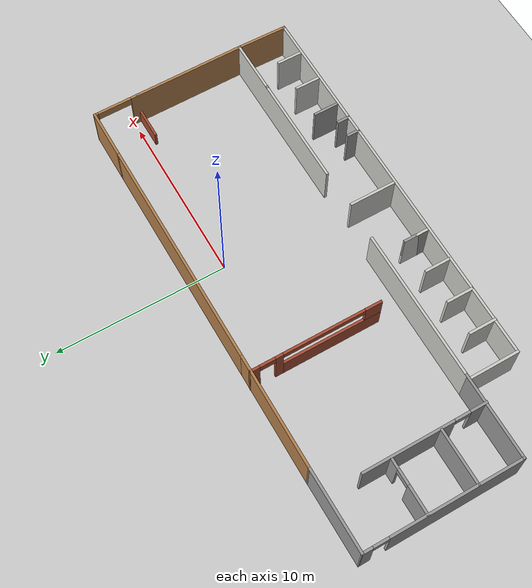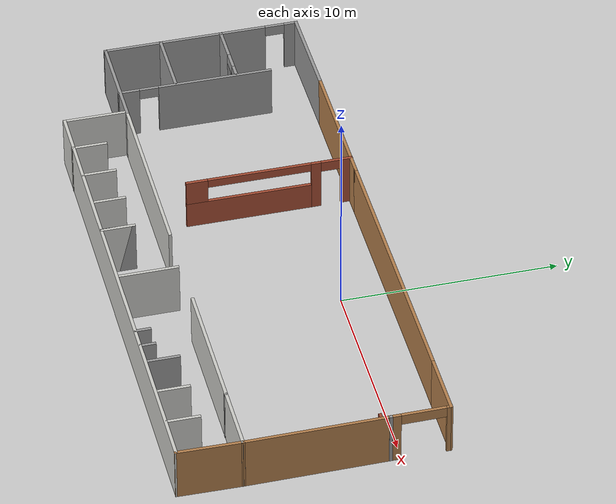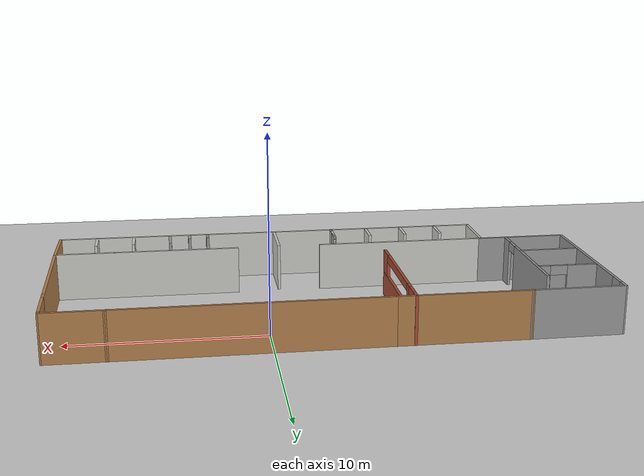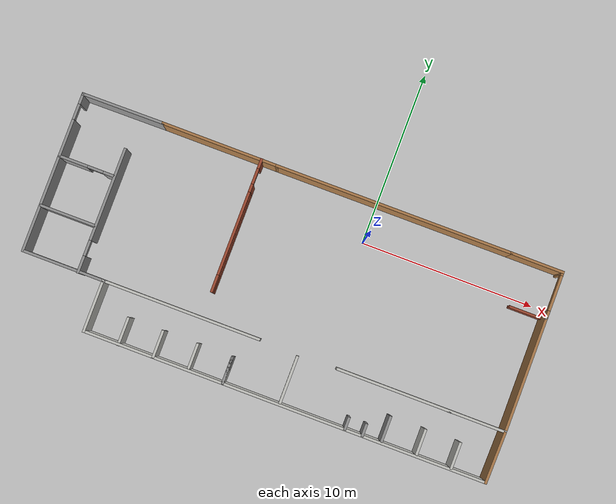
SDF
<sdf version="1.6">
 <world name="default">
  <model name="ground_plane">
   <static>1</static>
   <link name="link">
    <collision name="collision">
     <geometry><plane><normal>0 0 1</normal><size>100 100</size></plane></geometry>
     <surface><friction><ode><mu>100</mu><mu2>50</mu2></ode></friction></surface>
    </collision>
    <visual name="visual">
     <cast_shadows>0</cast_shadows>
     <geometry><plane><normal>0 0 1</normal><size>100 100</size></plane></geometry>
     <material>
      <script><uri>file://media/materials/scripts/gazebo.material</uri><name>Gazebo/Grey</name></script>
     </material>
    </visual>
   </link>
  </model>
  <model name="rest">
   <pose>-3.19031 -3.86827 0 0 -0 0</pose>
   <link name="Wall_105">
    <collision name="Wall_105_Collision">
     <geometry><box><size>1.5 0.15 2.5</size></box></geometry>
     <pose>0 0 1.25 0 -0 0</pose>
    </collision>
    <visual name="Wall_105_Visual">
     <pose>0 0 1.25 0 -0 0</pose>
     <geometry><box><size>1.5 0.15 2.5</size></box></geometry>
     <material>
      <script><uri>file://media/materials/scripts/gazebo.material</uri><name>Gazebo/CeilingTiled</name></script>
      <ambient>1 1 1 1</ambient>
     </material>
     <meta><layer>0</layer></meta>
    </visual>
    <pose>9.84331 -5.22473 0 0 -0 1.5708</pose>
   </link>
   <link name="Wall_107">
    <collision name="Wall_107_Collision">
     <geometry><box><size>1.538 0.15 2.5</size></box></geometry>
     <pose>0 0 1.25 0 -0 0</pose>
    </collision>
    <visual name="Wall_107_Visual">
     <pose>0 0 1.25 0 -0 0</pose>
     <geometry><box><size>1.538 0.15 2.5</size></box></geometry>
     <material>
      <script><uri>file://media/materials/scripts/gazebo.material</uri><name>Gazebo/CeilingTiled</name></script>
      <ambient>1 1 1 1</ambient>
     </material>
     <meta><layer>0</layer></meta>
    </visual>
    <pose>11.8423 -5.24373 0 0 0 -1.5708</pose>
   </link>
   <link name="Wall_109">
    <collision name="Wall_109_Collision">
     <geometry><box><size>0.744777 0.15 2.5</size></box></geometry>
     <pose>0 0 1.25 0 -0 0</pose>
    </collision>
    <visual name="Wall_109_Visual">
     <pose>0 0 1.25 0 -0 0</pose>
     <geometry><box><size>0.744777 0.15 2.5</size></box></geometry>
     <material>
      <script><uri>file://media/materials/scripts/gazebo.material</uri><name>Gazebo/Grey</name></script>
      <ambient>1 1 1 1</ambient>
     </material>
     <meta><layer>0</layer></meta>
    </visual>
    <pose>6.76931 -5.68423 0 0 -0 1.5708</pose>
   </link>
   <link name="Wall_113">
    <collision name="Wall_113_Collision">
     <geometry><box><size>0.745 0.15 2.5</size></box></geometry>
     <pose>0 0 1.25 0 -0 0</pose>
    </collision>
    <visual name="Wall_113_Visual">
     <pose>0 0 1.25 0 -0 0</pose>
     <geometry><box><size>0.745 0.15 2.5</size></box></geometry>
     <material>
      <script><uri>file://media/materials/scripts/gazebo.material</uri><name>Gazebo/Grey</name></script>
      <ambient>1 1 1 1</ambient>
     </material>
     <meta><layer>0</layer></meta>
    </visual>
    <pose>5.76931 -5.68423 0 0 -0 1.5708</pose>
   </link>
   <link name="Wall_115">
    <collision name="Wall_115_Collision">
     <geometry><box><size>1.643 0.15 2.5</size></box></geometry>
     <pose>0 0 1.25 0 -0 0</pose>
    </collision>
    <visual name="Wall_115_Visual">
     <pose>0 0 1.25 0 -0 0</pose>
     <geometry><box><size>1.643 0.15 2.5</size></box></geometry>
     <material>
      <script><uri>file://media/materials/scripts/gazebo.material</uri><name>Gazebo/CeilingTiled</name></script>
      <ambient>1 1 1 1</ambient>
     </material>
     <meta><layer>0</layer></meta>
    </visual>
    <pose>-7.25669 -5.29623 0 0 0 -1.5708</pose>
   </link>
   <link name="Wall_117">
    <collision name="Wall_117_Collision">
     <geometry><box><size>1.59 0.15 2.5</size></box></geometry>
     <pose>0 0 1.25 0 -0 0</pose>
    </collision>
    <visual name="Wall_117_Visual">
     <pose>0 0 1.25 0 -0 0</pose>
     <geometry><box><size>1.59 0.15 2.5</size></box></geometry>
     <material>
      <script><uri>file://media/materials/scripts/gazebo.material</uri><name>Gazebo/CeilingTiled</name></script>
      <ambient>1 1 1 1</ambient>
     </material>
     <meta><layer>0</layer></meta>
    </visual>
    <pose>-5.25669 -5.26973 0 0 0 -1.5708</pose>
   </link>
   <link name="Wall_119">
    <collision name="Wall_119_Collision">
     <geometry><box><size>1.538 0.15 2.5</size></box></geometry>
     <pose>0 0 1.25 0 -0 0</pose>
    </collision>
    <visual name="Wall_119_Visual">
     <pose>0 0 1.25 0 -0 0</pose>
     <geometry><box><size>1.538 0.15 2.5</size></box></geometry>
     <material>
      <script><uri>file://media/materials/scripts/gazebo.material</uri><name>Gazebo/CeilingTiled</name></script>
      <ambient>1 1 1 1</ambient>
     </material>
     <meta><layer>0</layer></meta>
    </visual>
    <pose>-3.25669 -5.24373 0 0 0 -1.5708</pose>
   </link>
   <link name="Wall_121">
    <collision name="Wall_121_Collision">
     <geometry><box><size>1.59 0.15 2.5</size></box></geometry>
     <pose>0 0 1.25 0 -0 0</pose>
    </collision>
    <visual name="Wall_121_Visual">
     <pose>0 0 1.25 0 -0 0</pose>
     <geometry><box><size>1.59 0.15 2.5</size></box></geometry>
     <material>
      <script><uri>file://media/materials/scripts/gazebo.material</uri><name>Gazebo/Grey</name></script>
      <ambient>1 1 1 1</ambient>
     </material>
     <meta><layer>0</layer></meta>
    </visual>
    <pose>-1.25669 -5.26973 0 0 0 -1.5708</pose>
   </link>
   <link name="Wall_122">
    <collision name="Wall_122_Collision">
     <geometry><box><size>1.59 0.15 2.5</size></box></geometry>
     <pose>0 0 1.25 0 -0 0</pose>
    </collision>
    <visual name="Wall_122_Visual">
     <pose>0 0 1.25 0 -0 0</pose>
     <geometry><box><size>1.59 0.15 2.5</size></box></geometry>
     <material>
      <script><uri>file://media/materials/scripts/gazebo.material</uri><name>Gazebo/CeilingTiled</name></script>
      <ambient>1 1 1 1</ambient>
     </material>
     <meta><layer>0</layer></meta>
    </visual>
    <pose>-1.25669 -5.26973 0 0 -0 1.5708</pose>
   </link>
   <link name="Wall_125">
    <collision name="Wall_125_Collision">
     <geometry><box><size>4.79 0.15 2.5</size></box></geometry>
     <pose>0 0 1.25 0 -0 0</pose>
    </collision>
    <visual name="Wall_125_Visual">
     <pose>0 0 1.25 0 -0 0</pose>
     <geometry><box><size>4.79 0.15 2.5</size></box></geometry>
     <material>
      <script><uri>file://media/materials/scripts/gazebo.material</uri><name>Gazebo/Grey</name></script>
      <ambient>1 1 1 1</ambient>
     </material>
     <meta><layer>0</layer></meta>
    </visual>
    <pose>-11.5766 5.9975 0 0 0 -3.13393</pose>
   </link>
   <link name="Wall_126">
    <pose>-13.8966 1.42972 0 0 0 -1.5708</pose>
    <visual name="Wall_126_Visual_0">
     <pose>-4.29481 0 1.25 0 -0 0</pose>
     <geometry><box><size>0.660381 0.15 2.5</size></box></geometry>
     <material>
      <script><uri>file://media/materials/scripts/gazebo.material</uri><name>Gazebo/Grey</name></script>
      <ambient>1 1 1 1</ambient>
     </material>
     <meta><layer>0</layer></meta>
    </visual>
    <collision name="Wall_126_Collision_0">
     <geometry><box><size>0.660381 0.15 2.5</size></box></geometry>
     <pose>-4.29481 0 1.25 0 -0 0</pose>
    </collision>
    <visual name="Wall_126_Visual_1">
     <pose>0.780191 0 1.25 0 -0 0</pose>
     <geometry><box><size>7.68962 0.15 2.5</size></box></geometry>
     <material>
      <script><uri>file://media/materials/scripts/gazebo.material</uri><name>Gazebo/Grey</name></script>
      <ambient>1 1 1 1</ambient>
     </material>
     <meta><layer>0</layer></meta>
    </visual>
    <collision name="Wall_126_Collision_1">
     <geometry><box><size>7.68962 0.15 2.5</size></box></geometry>
     <pose>0.780191 0 1.25 0 -0 0</pose>
    </collision>
    <visual name="Wall_126_Visual_2">
     <pose>-3.51462 0 2.25 0 -0 0</pose>
     <geometry><box><size>0.9 0.15 0.5</size></box></geometry>
     <material>
      <script><uri>file://media/materials/scripts/gazebo.material</uri><name>Gazebo/Grey</name></script>
      <ambient>1 1 1 1</ambient>
     </material>
     <meta><layer>0</layer></meta>
    </visual>
    <collision name="Wall_126_Collision_2">
     <geometry><box><size>0.9 0.15 0.5</size></box></geometry>
     <pose>-3.51462 0 2.25 0 -0 0</pose>
    </collision>
   </link>
   <link name="Wall_128">
    <collision name="Wall_128_Collision">
     <geometry><box><size>5 0.15 2.5</size></box></geometry>
     <pose>0 0 1.25 0 -0 0</pose>
    </collision>
    <visual name="Wall_128_Visual">
     <pose>0 0 1.25 0 -0 0</pose>
     <geometry><box><size>5 0.15 2.5</size></box></geometry>
     <material>
      <script><uri>file://media/materials/scripts/gazebo.material</uri><name>Gazebo/Grey</name></script>
      <ambient>1 1 1 1</ambient>
     </material>
     <meta><layer>0</layer></meta>
    </visual>
    <pose>-11.4532 -3.11873 0 0 -0 3.14159</pose>
   </link>
   <link name="Wall_132">
    <pose>-10.6853 0.397406 0 0 0 -1.5708</pose>
    <visual name="Wall_132_Visual_0">
     <pose>-0.952875 0 1.25 0 -0 0</pose>
     <geometry><box><size>5.34425 0.15 2.5</size></box></geometry>
     <material>
      <script><uri>file://media/materials/scripts/gazebo.material</uri><name>Gazebo/Grey</name></script>
      <ambient>1 1 1 1</ambient>
     </material>
     <meta><layer>0</layer></meta>
    </visual>
    <collision name="Wall_132_Collision_0">
     <geometry><box><size>5.34425 0.15 2.5</size></box></geometry>
     <pose>-0.952875 0 1.25 0 -0 0</pose>
    </collision>
    <visual name="Wall_132_Visual_1">
     <pose>3.12213 0 1.25 0 -0 0</pose>
     <geometry><box><size>1.00575 0.15 2.5</size></box></geometry>
     <material>
      <script><uri>file://media/materials/scripts/gazebo.material</uri><name>Gazebo/Grey</name></script>
      <ambient>1 1 1 1</ambient>
     </material>
     <meta><layer>0</layer></meta>
    </visual>
    <collision name="Wall_132_Collision_1">
     <geometry><box><size>1.00575 0.15 2.5</size></box></geometry>
     <pose>3.12213 0 1.25 0 -0 0</pose>
    </collision>
    <visual name="Wall_132_Visual_2">
     <pose>2.16925 0 2.25 0 -0 0</pose>
     <geometry><box><size>0.9 0.15 0.5</size></box></geometry>
     <material>
      <script><uri>file://media/materials/scripts/gazebo.material</uri><name>Gazebo/Grey</name></script>
      <ambient>1 1 1 1</ambient>
     </material>
     <meta><layer>0</layer></meta>
    </visual>
    <collision name="Wall_132_Collision_2">
     <geometry><box><size>0.9 0.15 0.5</size></box></geometry>
     <pose>2.16925 0 2.25 0 -0 0</pose>
    </collision>
   </link>
   <link name="Wall_134">
    <collision name="Wall_134_Collision">
     <geometry><box><size>3.25 0.15 2.5</size></box></geometry>
     <pose>0 0 1.25 0 -0 0</pose>
    </collision>
    <visual name="Wall_134_Visual">
     <pose>0 0 1.25 0 -0 0</pose>
     <geometry><box><size>3.25 0.15 2.5</size></box></geometry>
     <material>
      <script><uri>file://media/materials/scripts/gazebo.material</uri><name>Gazebo/Grey</name></script>
      <ambient>1 1 1 1</ambient>
     </material>
     <meta><layer>0</layer></meta>
    </visual>
    <pose>-12.3185 -0.49507 0 0 -0 0</pose>
   </link>
   <link name="Wall_137">
    <pose>-12.336 2.3733 0 0 -0 0</pose>
    <visual name="Wall_137_Visual_0">
     <pose>-0.771842 0 1.25 0 -0 0</pose>
     <geometry><box><size>1.70632 0.15 2.5</size></box></geometry>
     <material>
      <script><uri>file://media/materials/scripts/gazebo.material</uri><name>Gazebo/Grey</name></script>
      <ambient>1 1 1 1</ambient>
     </material>
     <meta><layer>0</layer></meta>
    </visual>
    <collision name="Wall_137_Collision_0">
     <geometry><box><size>1.70632 0.15 2.5</size></box></geometry>
     <pose>-0.771842 0 1.25 0 -0 0</pose>
    </collision>
    <visual name="Wall_137_Visual_1">
     <pose>1.30316 0 1.25 0 -0 0</pose>
     <geometry><box><size>0.643683 0.15 2.5</size></box></geometry>
     <material>
      <script><uri>file://media/materials/scripts/gazebo.material</uri><name>Gazebo/Grey</name></script>
      <ambient>1 1 1 1</ambient>
     </material>
     <meta><layer>0</layer></meta>
    </visual>
    <collision name="Wall_137_Collision_1">
     <geometry><box><size>0.643683 0.15 2.5</size></box></geometry>
     <pose>1.30316 0 1.25 0 -0 0</pose>
    </collision>
    <visual name="Wall_137_Visual_2">
     <pose>0.531317 0 2.25 0 -0 0</pose>
     <geometry><box><size>0.9 0.15 0.5</size></box></geometry>
     <material>
      <script><uri>file://media/materials/scripts/gazebo.material</uri><name>Gazebo/Grey</name></script>
      <ambient>1 1 1 1</ambient>
     </material>
     <meta><layer>0</layer></meta>
    </visual>
    <collision name="Wall_137_Collision_2">
     <geometry><box><size>0.9 0.15 0.5</size></box></geometry>
     <pose>0.531317 0 2.25 0 -0 0</pose>
    </collision>
   </link>
   <link name="Wall_3">
    <collision name="Wall_3_Collision">
     <geometry><box><size>13.697 0.15 2.5</size></box></geometry>
     <pose>0 0 1.25 0 -0 0</pose>
    </collision>
    <visual name="Wall_3_Visual">
     <pose>0 0 1.25 0 -0 0</pose>
     <geometry><box><size>13.697 0.15 2.5</size></box></geometry>
     <material>
      <script><uri>file://media/materials/scripts/gazebo.material</uri><name>Gazebo/Wood</name></script>
      <ambient>1 1 1 1</ambient>
     </material>
     <meta><layer>0</layer></meta>
    </visual>
    <pose>4.11681 6.02877 0 0 0 -3.1396</pose>
   </link>
   <link name="Wall_45">
    <collision name="Wall_45_Collision">
     <geometry><box><size>3.1 0.15 2.5</size></box></geometry>
     <pose>0 0 1.25 0 -0 0</pose>
    </collision>
    <visual name="Wall_45_Visual">
     <pose>0 0 1.25 0 -0 0</pose>
     <geometry><box><size>3.1 0.15 2.5</size></box></geometry>
     <material>
      <script><uri>file://media/materials/scripts/gazebo.material</uri><name>Gazebo/Wood</name></script>
      <ambient>1 1 1 1</ambient>
     </material>
     <meta><layer>0</layer></meta>
    </visual>
    <pose>12.3653 6.04227 0 0 -0 0</pose>
   </link>
   <link name="Wall_56">
    <collision name="Wall_56_Collision">
     <geometry><box><size>0.15 0.15 2.5</size></box></geometry>
     <pose>0 0 1.25 0 -0 0</pose>
    </collision>
    <visual name="Wall_56_Visual">
     <pose>0 0 1.25 0 -0 0</pose>
     <geometry><box><size>0.15 0.15 2.5</size></box></geometry>
     <material>
      <script><uri>file://media/materials/scripts/gazebo.material</uri><name>Gazebo/Grey</name></script>
      <ambient>1 1 1 1</ambient>
     </material>
     <meta><layer>0</layer></meta>
    </visual>
    <pose>10.7303 -3.13173 0 0 -0 0</pose>
   </link>
   <link name="Wall_67">
    <collision name="Wall_67_Collision">
     <geometry><box><size>6.75 0.15 2.5</size></box></geometry>
     <pose>0 0 1.25 0 -0 0</pose>
    </collision>
    <visual name="Wall_67_Visual">
     <pose>0 0 1.25 0 -0 0</pose>
     <geometry><box><size>6.75 0.15 2.5</size></box></geometry>
     <material>
      <script><uri>file://media/materials/scripts/gazebo.material</uri><name>Gazebo/Wood</name></script>
      <ambient>1 1 1 1</ambient>
     </material>
     <meta><layer>0</layer></meta>
    </visual>
    <pose>-5.95669 6.01527 0 0 -0 3.14159</pose>
   </link>
   <link name="Wall_73">
    <collision name="Wall_73_Collision">
     <geometry><box><size>0.15 0.15 2.5</size></box></geometry>
     <pose>0 0 1.25 0 -0 0</pose>
    </collision>
    <visual name="Wall_73_Visual">
     <pose>0 0 1.25 0 -0 0</pose>
     <geometry><box><size>0.15 0.15 2.5</size></box></geometry>
     <material>
      <script><uri>file://media/materials/scripts/gazebo.material</uri><name>Gazebo/Grey</name></script>
      <ambient>1 1 1 1</ambient>
     </material>
     <meta><layer>0</layer></meta>
    </visual>
    <pose>13.8608 3.37641 0 0 -0 0</pose>
   </link>
   <link name="Wall_76">
    <pose>13.868 1.46177 0 0 0 -1.56474</pose>
    <visual name="Wall_76_Visual_0">
     <pose>-4.52154 0 1.25 0 -0 0</pose>
     <geometry><box><size>0.268095 0.15 2.5</size></box></geometry>
     <material>
      <script><uri>file://media/materials/scripts/gazebo.material</uri><name>Gazebo/Wood</name></script>
      <ambient>1 1 1 1</ambient>
     </material>
     <meta><layer>0</layer></meta>
    </visual>
    <collision name="Wall_76_Collision_0">
     <geometry><box><size>0.268095 0.15 2.5</size></box></geometry>
     <pose>-4.52154 0 1.25 0 -0 0</pose>
    </collision>
    <visual name="Wall_76_Visual_1">
     <pose>1.14378 0 1.25 0 -0 0</pose>
     <geometry><box><size>7.02361 0.15 2.5</size></box></geometry>
     <material>
      <script><uri>file://media/materials/scripts/gazebo.material</uri><name>Gazebo/Wood</name></script>
      <ambient>1 1 1 1</ambient>
     </material>
     <meta><layer>0</layer></meta>
    </visual>
    <collision name="Wall_76_Collision_1">
     <geometry><box><size>7.02361 0.15 2.5</size></box></geometry>
     <pose>1.14378 0 1.25 0 -0 0</pose>
    </collision>
    <visual name="Wall_76_Visual_2">
     <pose>-3.37776 0 2.25 0 -0 0</pose>
     <geometry><box><size>2.01946 0.15 0.5</size></box></geometry>
     <material>
      <script><uri>file://media/materials/scripts/gazebo.material</uri><name>Gazebo/Wood</name></script>
      <ambient>1 1 1 1</ambient>
     </material>
     <meta><layer>0</layer></meta>
    </visual>
    <collision name="Wall_76_Collision_2">
     <geometry><box><size>2.01946 0.15 0.5</size></box></geometry>
     <pose>-3.37776 0 2.25 0 -0 0</pose>
    </collision>
   </link>
   <link name="Wall_78">
    <pose>-3.55923 2.22695 0 0 0 -1.5708</pose>
    <visual name="Wall_78_Visual_0">
     <pose>-3.58241 0 1.25 0 -0 0</pose>
     <geometry><box><size>0.585178 0.15 2.5</size></box></geometry>
     <material>
      <script><uri>file://media/materials/scripts/gazebo.material</uri><name>Gazebo/Bricks</name></script>
      <ambient>1 1 1 1</ambient>
     </material>
     <meta><layer>0</layer></meta>
    </visual>
    <collision name="Wall_78_Collision_0">
     <geometry><box><size>0.585178 0.15 2.5</size></box></geometry>
     <pose>-3.58241 0 1.25 0 -0 0</pose>
    </collision>
    <visual name="Wall_78_Visual_1">
     <pose>-2.16112 0 1.25 0 -0 0</pose>
     <geometry><box><size>0.457397 0.15 2.5</size></box></geometry>
     <material>
      <script><uri>file://media/materials/scripts/gazebo.material</uri><name>Gazebo/Bricks</name></script>
      <ambient>1 1 1 1</ambient>
     </material>
     <meta><layer>0</layer></meta>
    </visual>
    <collision name="Wall_78_Collision_1">
     <geometry><box><size>0.457397 0.15 2.5</size></box></geometry>
     <pose>-2.16112 0 1.25 0 -0 0</pose>
    </collision>
    <visual name="Wall_78_Visual_2">
     <pose>0.971288 0 0.65 0 -0 0</pose>
     <geometry><box><size>5.80743 0.15 1.3</size></box></geometry>
     <material>
      <script><uri>file://media/materials/scripts/gazebo.material</uri><name>Gazebo/Bricks</name></script>
      <ambient>1 1 1 1</ambient>
     </material>
     <meta><layer>0</layer></meta>
    </visual>
    <collision name="Wall_78_Collision_2">
     <geometry><box><size>5.80743 0.15 1.3</size></box></geometry>
     <pose>0.971288 0 0.65 0 -0 0</pose>
    </collision>
    <visual name="Wall_78_Visual_3">
     <pose>3.37129 0 1.9 0 -0 0</pose>
     <geometry><box><size>1.00743 0.15 1.2</size></box></geometry>
     <material>
      <script><uri>file://media/materials/scripts/gazebo.material</uri><name>Gazebo/Bricks</name></script>
      <ambient>1 1 1 1</ambient>
     </material>
     <meta><layer>0</layer></meta>
    </visual>
    <collision name="Wall_78_Collision_3">
     <geometry><box><size>1.00743 0.15 1.2</size></box></geometry>
     <pose>3.37129 0 1.9 0 -0 0</pose>
    </collision>
    <visual name="Wall_78_Visual_4">
     <pose>-2.83982 0 2.25 0 -0 0</pose>
     <geometry><box><size>0.9 0.15 0.5</size></box></geometry>
     <material>
      <script><uri>file://media/materials/scripts/gazebo.material</uri><name>Gazebo/Bricks</name></script>
      <ambient>1 1 1 1</ambient>
     </material>
     <meta><layer>0</layer></meta>
    </visual>
    <collision name="Wall_78_Collision_4">
     <geometry><box><size>0.9 0.15 0.5</size></box></geometry>
     <pose>-2.83982 0 2.25 0 -0 0</pose>
    </collision>
    <visual name="Wall_78_Visual_5">
     <pose>0.467575 0 2.3 0 -0 0</pose>
     <geometry><box><size>4.8 0.15 0.4</size></box></geometry>
     <material>
      <script><uri>file://media/materials/scripts/gazebo.material</uri><name>Gazebo/Bricks</name></script>
      <ambient>1 1 1 1</ambient>
     </material>
     <meta><layer>0</layer></meta>
    </visual>
    <collision name="Wall_78_Collision_5">
     <geometry><box><size>4.8 0.15 0.4</size></box></geometry>
     <pose>0.467575 0 2.3 0 -0 0</pose>
    </collision>
   </link>
   <link name="Wall_80">
    <collision name="Wall_80_Collision">
     <geometry><box><size>1.99 0.14 1</size></box></geometry>
     <pose>0 0 0.5 0 -0 0</pose>
    </collision>
    <visual name="Wall_80_Visual">
     <pose>0 0 0.5 0 -0 0</pose>
     <geometry><box><size>1.99 0.14 1</size></box></geometry>
     <material>
      <script><uri>file://media/materials/scripts/gazebo.material</uri><name>Gazebo/Bricks</name></script>
      <ambient>1 1 1 1</ambient>
     </material>
     <meta><layer>0</layer></meta>
    </visual>
    <pose>12.9358 3.3939 0 0 -0 3.14159</pose>
   </link>
   <link name="Wall_84">
    <collision name="Wall_84_Collision">
     <geometry><box><size>3.04349 0.15 2.5</size></box></geometry>
     <pose>0 0 1.25 0 -0 0</pose>
    </collision>
    <visual name="Wall_84_Visual">
     <pose>0 0 1.25 0 -0 0</pose>
     <geometry><box><size>3.04349 0.15 2.5</size></box></geometry>
     <material>
      <script><uri>file://media/materials/scripts/gazebo.material</uri><name>Gazebo/CeilingTiled</name></script>
      <ambient>1 1 1 1</ambient>
     </material>
     <meta><layer>0</layer></meta>
    </visual>
    <pose>-9.25669 -4.57798 0 0 0 -1.5708</pose>
   </link>
   <link name="Wall_85">
    <collision name="Wall_85_Collision">
     <geometry><box><size>23.25 0.15 2.5</size></box></geometry>
     <pose>0 0 1.25 0 -0 0</pose>
    </collision>
    <visual name="Wall_85_Visual">
     <pose>0 0 1.25 0 -0 0</pose>
     <geometry><box><size>23.25 0.15 2.5</size></box></geometry>
     <material>
      <script><uri>file://media/materials/scripts/gazebo.material</uri><name>Gazebo/CeilingTiled</name></script>
      <ambient>1 1 1 1</ambient>
     </material>
     <meta><layer>0</layer></meta>
    </visual>
    <pose>2.29331 -6.02473 0 0 -0 0</pose>
   </link>
   <link name="Wall_86">
    <collision name="Wall_86_Collision">
     <geometry><box><size>3.05647 0.15 2.5</size></box></geometry>
     <pose>0 0 1.25 0 -0 0</pose>
    </collision>
    <visual name="Wall_86_Visual">
     <pose>0 0 1.25 0 -0 0</pose>
     <geometry><box><size>3.05647 0.15 2.5</size></box></geometry>
     <material>
      <script><uri>file://media/materials/scripts/gazebo.material</uri><name>Gazebo/Wood</name></script>
      <ambient>1 1 1 1</ambient>
     </material>
     <meta><layer>0</layer></meta>
    </visual>
    <pose>13.8695 -4.57173 0 0 -0 1.55274</pose>
   </link>
   <link name="Wall_93">
    <collision name="Wall_93_Collision">
     <geometry><box><size>8.93004 0.15 2.5</size></box></geometry>
     <pose>0 0 1.25 0 -0 0</pose>
    </collision>
    <visual name="Wall_93_Visual">
     <pose>0 0 1.25 0 -0 0</pose>
     <geometry><box><size>8.93004 0.15 2.5</size></box></geometry>
     <material>
      <script><uri>file://media/materials/scripts/gazebo.material</uri><name>Gazebo/CeilingTiled</name></script>
      <ambient>1 1 1 1</ambient>
     </material>
     <meta><layer>0</layer></meta>
    </visual>
    <pose>-4.65571 -3.11873 0 0 -0 3.14159</pose>
   </link>
   <link name="Wall_95">
    <collision name="Wall_95_Collision">
     <geometry><box><size>9.75 0.15 2.5</size></box></geometry>
     <pose>0 0 1.25 0 -0 0</pose>
    </collision>
    <visual name="Wall_95_Visual">
     <pose>0 0 1.25 0 -0 0</pose>
     <geometry><box><size>9.75 0.15 2.5</size></box></geometry>
     <material>
      <script><uri>file://media/materials/scripts/gazebo.material</uri><name>Gazebo/CeilingTiled</name></script>
      <ambient>1 1 1 1</ambient>
     </material>
     <meta><layer>0</layer></meta>
    </visual>
    <pose>9.09578 -3.11873 0 0 -0 0</pose>
   </link>
   <link name="Wall_97">
    <collision name="Wall_97_Collision">
     <geometry><box><size>2.75 0.15 2.5</size></box></geometry>
     <pose>0 0 1.25 0 -0 0</pose>
    </collision>
    <visual name="Wall_97_Visual">
     <pose>0 0 1.25 0 -0 0</pose>
     <geometry><box><size>2.75 0.15 2.5</size></box></geometry>
     <material>
      <script><uri>file://media/materials/scripts/gazebo.material</uri><name>Gazebo/CeilingTiled</name></script>
      <ambient>1 1 1 1</ambient>
     </material>
     <meta><layer>0</layer></meta>
    </visual>
    <pose>2.01248 -4.59348 0 0 0 -1.5708</pose>
   </link>
   <link name="Wall_99">
    <collision name="Wall_99_Collision">
     <geometry><box><size>1.5 0.15 2.5</size></box></geometry>
     <pose>0 0 1.25 0 -0 0</pose>
    </collision>
    <visual name="Wall_99_Visual">
     <pose>0 0 1.25 0 -0 0</pose>
     <geometry><box><size>1.5 0.15 2.5</size></box></geometry>
     <material>
      <script><uri>file://media/materials/scripts/gazebo.material</uri><name>Gazebo/Grey</name></script>
      <ambient>1 1 1 1</ambient>
     </material>
     <meta><layer>0</layer></meta>
    </visual>
    <pose>7.84331 -5.22473 0 0 -0 1.5708</pose>
   </link>
   <static>1</static>
  </model>
 </world>
</sdf>
